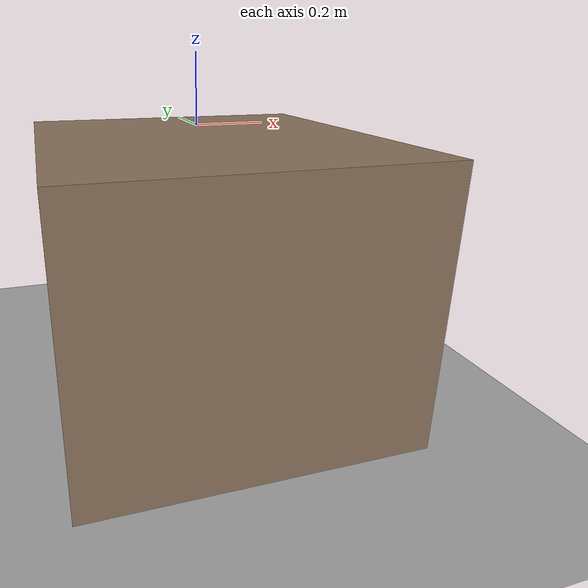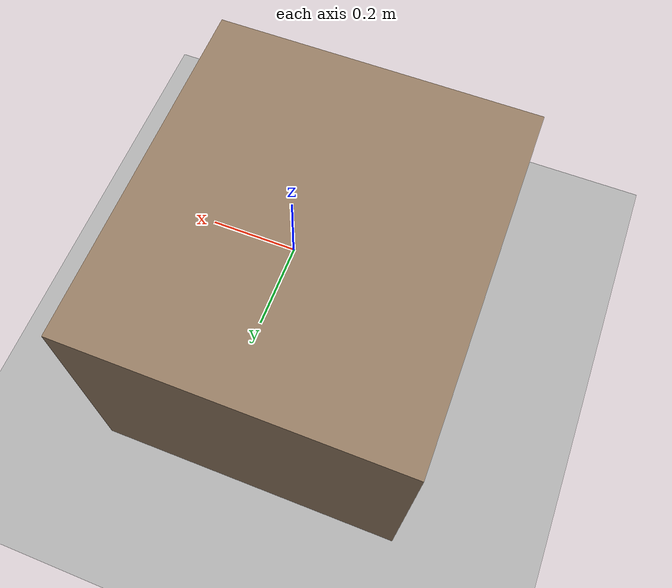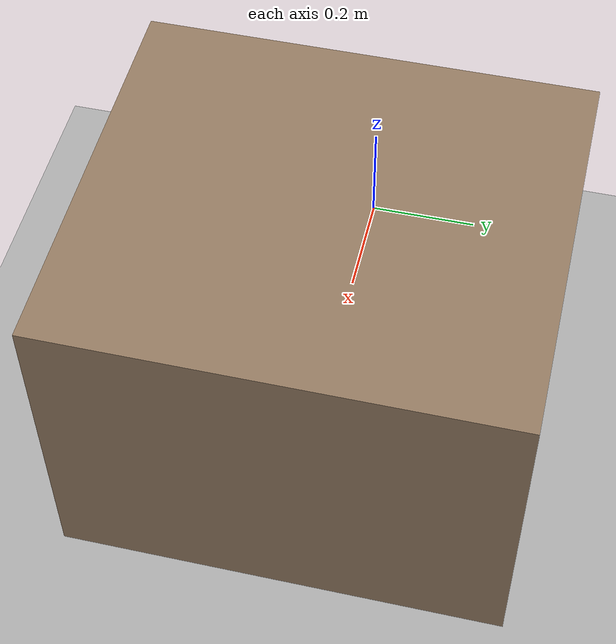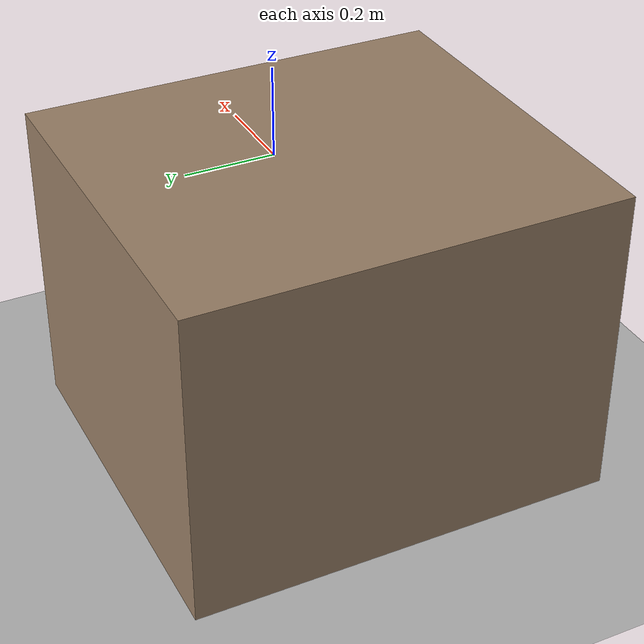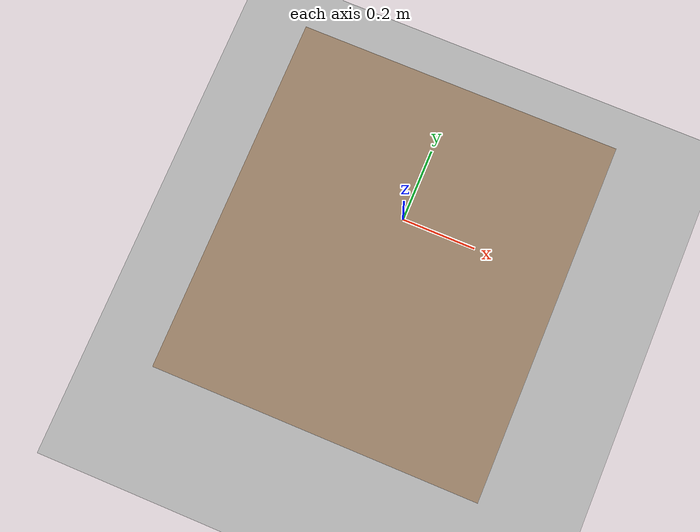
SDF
<?xml version="1.0"?>
<sdf version="1.6">
  <world name="push_alphabet">
    <physics name="default_physics" default="true" type="ode">
      <max_step_size>0.001</max_step_size>
      <real_time_factor>1.0</real_time_factor>
      <real_time_update_rate>1000</real_time_update_rate>
      <ode>
        <solver><type>quick</type><iters>50</iters><sor>1.3</sor></solver>
        <constraints>
          <cfm>0</cfm>
          <erp>0.2</erp>
          <contact_max_correcting_vel>0.1</contact_max_correcting_vel>
          <contact_surface_layer>0.0005</contact_surface_layer>
        </constraints>
      </ode>
    </physics>
    <gravity>0 0 -9.81</gravity>

    <scene>
      <ambient>0.55 0.55 0.55 1</ambient>
      <background>0.75 0.8 0.85 1</background>
      <shadows>false</shadows>
      <grid>false</grid>
    </scene>

    <!-- Named "sun": scene_manager recolors it through /set_light_properties at the end. -->
    <light name="sun" type="directional">
      <cast_shadows>false</cast_shadows>
      <pose>0 0 10 0 0 0</pose>
      <diffuse>0.85 0.85 0.85 1</diffuse>
      <specular>0.1 0.1 0.1 1</specular>
      <attenuation><range>1000</range><constant>0.9</constant><linear>0.01</linear><quadratic>0.001</quadratic></attenuation>
      <direction>-0.3 0.2 -0.9</direction>
    </light>

    <model name="ground_plane">
      <static>true</static>
      <pose>0 0 -0.77 0 0 0</pose>
      <link name="link">
        <collision name="c">
          <geometry><plane><normal>0 0 1</normal><size>20 20</size></plane></geometry>
        </collision>
        <visual name="v">
          <cast_shadows>false</cast_shadows>
          <geometry><plane><normal>0 0 1</normal><size>20 20</size></plane></geometry>
          <material><ambient>0.7 0.7 0.7 1</ambient><diffuse>0.7 0.7 0.7 1</diffuse></material>
        </visual>
      </link>
    </model>

    <!-- Desk under the table plate and the display shelf (both have their bottom at z = -0.02). -->
    <model name="desk">
      <static>true</static>
      <pose>0 -0.1 -0.395 0 0 0</pose>
      <link name="desk">
        <collision name="c">
          <geometry><box><size>0.9 1.0 0.75</size></box></geometry>
        </collision>
        <visual name="v">
          <geometry><box><size>0.9 1.0 0.75</size></box></geometry>
          <material><ambient>0.55 0.45 0.35 1</ambient><diffuse>0.6 0.5 0.4 1</diffuse></material>
        </visual>
      </link>
    </model>

    <!-- /set_entity_state, /get_entity_state, /model_states, /link_states (ground truth for tools). -->
    <plugin name="gazebo_ros_state" filename="libgazebo_ros_state.so">
      <ros><namespace>/</namespace></ros>
      <update_rate>20.0</update_rate>
    </plugin>
    <!-- /set_light_properties and friends. -->
    <plugin name="gazebo_ros_properties" filename="libgazebo_ros_properties.so">
      <ros><namespace>/</namespace></ros>
    </plugin>

    <gui fullscreen="0">
      <camera name="user_camera">
        <pose>0 -0.8 0.6 0 0.68 1.5708</pose>
        <view_controller>orbit</view_controller>
      </camera>
    </gui>
  </world>
</sdf>
